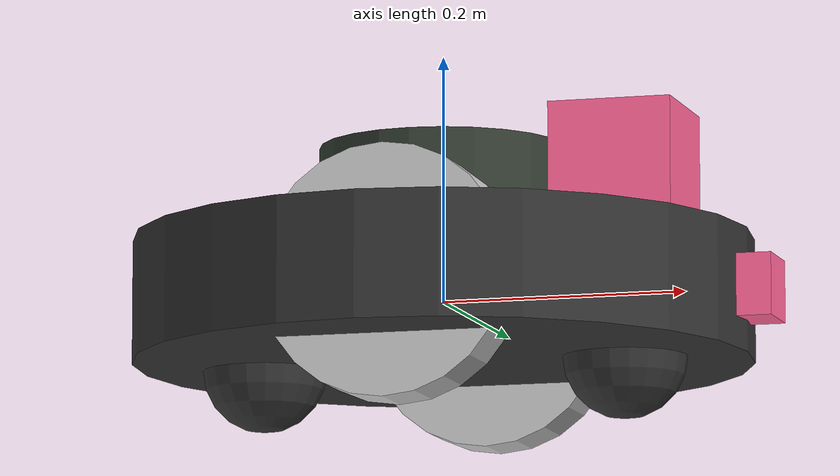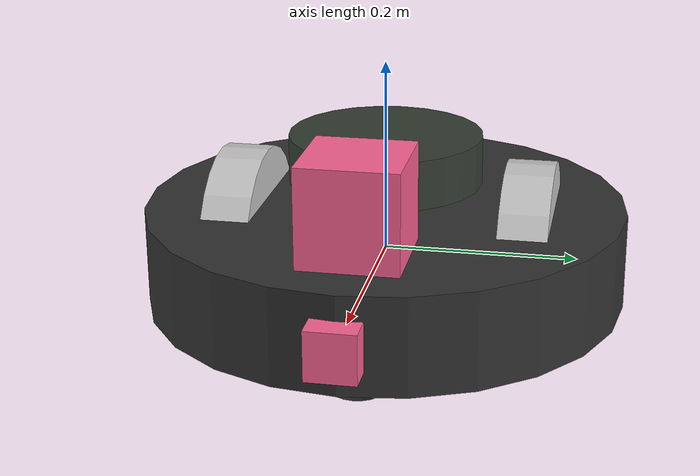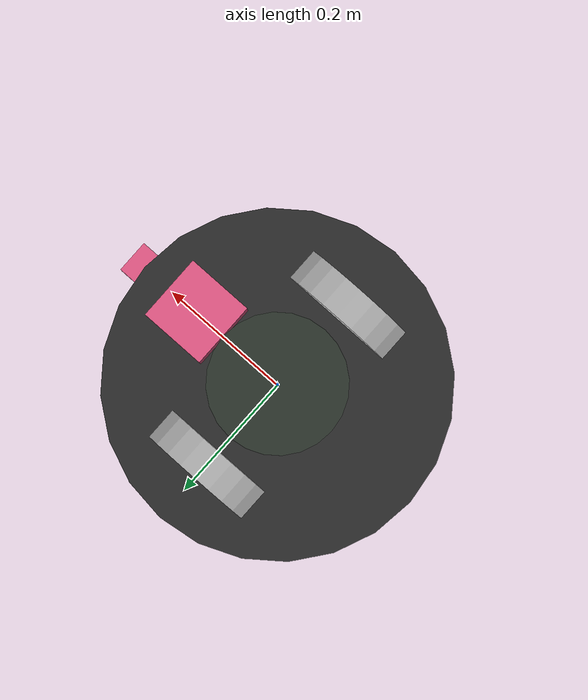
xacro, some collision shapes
<?xml version='1.0'?>

<robot name="slam_bot" xmlns:xacro="http://www.ros.org/wiki/xacro">
  <xacro:include filename="$(find slam_project)/urdf/slam_bot.gazebo" />
  <xacro:property name="pi" value="3.1415"/>

  <link name="robot_footprint"></link>

  <joint name="robot_footprint_joint" type="fixed">
    <origin xyz="0 0 0" rpy="0 0 0" />
    <parent link="robot_footprint"/>
    <child link="chassis" />
  </joint>

  <link name='chassis'>
    <pose>0 0 0.1 0 0 0</pose>

    <inertial>
      <mass value="15.0"/>
      <origin xyz="0.0 0 0" rpy=" 0 0 0"/>
      <inertia
          ixx="0.1" ixy="0" ixz="0"
          iyy="0.1" iyz="0"
          izz="0.1"
      />
    </inertial>

    <collision name='collision'>
      <origin xyz="0 0 0" rpy=" 0 0 0"/>
      <geometry>
        <cylinder radius="0.25" length="0.1"/>
      </geometry>
    </collision>

    <visual name='chassis_visual'>
      <origin xyz="0 0 0" rpy=" 0 0 0"/>
      <geometry>
        <cylinder radius="0.25" length="0.1"/>
      </geometry>
      <material name="chassis_color">
        <color rgba="${50/255} ${50/255} ${50/255} 1.0"/>
      </material>
    </visual>

    <collision name='back_caster_collision'>
      <origin xyz="-0.15 0 -0.05" rpy=" 0 0 0"/>
      <geometry>
        <sphere radius="0.05"/>
      </geometry>
      <surface>
        <friction>
          <ode>
            <mu>0</mu>
            <mu2>0</mu2>
            <slip1>1.0</slip1>
            <slip2>1.0</slip2>
          </ode>
        </friction>
      </surface>
    </collision>

    <visual name='back_caster_visual'>
      <origin xyz="-0.15 0 -0.05" rpy=" 0 0 0"/>
      <geometry>
        <sphere radius="0.05"/>
      </geometry>
      <material name="back_caster_color">
        <color rgba="${50/255} ${50/255} ${50/255} 1.0"/>
      </material>
    </visual>

    <collision name='front_caster_collision'>
      <origin xyz="0.15 0 -0.05" rpy=" 0 0 0"/>
      <geometry>
        <sphere radius="0.05"/>
      </geometry>
      <surface>
        <friction>
          <ode>
            <mu>0</mu>
            <mu2>0</mu2>
            <slip1>1.0</slip1>
            <slip2>1.0</slip2>
          </ode>
        </friction>
      </surface>
    </collision>

    <visual name='front_caster_visual'>
      <origin xyz="0.15 0 -0.05" rpy=" 0 0 0"/>
      <geometry>
        <sphere radius="0.05"/>
      </geometry>
      <material name="front_caster_color">
        <color rgba="${50/255} ${50/255} ${50/255} 1.0"/>
      </material>
    </visual>

  </link>

  <link name='left_wheel'>
    <inertial>
      <mass value="5.0"/>
      <origin xyz="0 0 0" rpy=" 0 1.5707 1.5707"/>
      <inertia
          ixx="0.1" ixy="0" ixz="0"
          iyy="0.1" iyz="0"
          izz="0.1"
      />
    </inertial>

    <collision name='left_wheel_collision'>
      <origin xyz="0 0 0" rpy=" 0 1.5707 1.5707"/>
      <geometry>
        <cylinder radius="0.1" length="0.05"/>
      </geometry>
    </collision>

    <visual name='left_wheel_visual'>
      <origin xyz="0 0 0" rpy=" 0 1.5707 1.5707"/>
      <geometry>
        <cylinder radius="0.1" length="0.05"/>
      </geometry>
      <material name="left_wheel_color">
        <color rgba="${200/255} ${200/255} ${200/255} 1.0"/>
      </material>
    </visual>
  </link>

  <joint type="continuous" name="left_wheel_hinge">
    <origin xyz="0 0.15 0" rpy="0 0 0"/>
    <child link="left_wheel"/>
    <parent link="chassis"/>
    <axis xyz="0 1 0" rpy="0 0 0"/>
    <limit effort="10000" velocity="1000"/>
    <joint_properties damping="1.0" friction="1.0"/>
  </joint>

  <link name='right_wheel'>
    <inertial>
      <mass value="5.0"/>
      <origin xyz="0 0 0" rpy=" 0 1.5707 1.5707"/>
      <inertia
          ixx="0.1" ixy="0" ixz="0"
          iyy="0.1" iyz="0"
          izz="0.1"
      />
    </inertial>

    <collision name='right_wheel_collision'>
      <origin xyz="0 0 0" rpy=" 0 1.5707 1.5707"/>
      <geometry>
        <cylinder radius="0.1" length="0.05"/>
      </geometry>
    </collision>

    <visual name='right_wheel_visual'>
      <origin xyz="0 0 0" rpy=" 0 1.5707 1.5707"/>
      <geometry>
        <cylinder radius="0.1" length="0.05"/>
      </geometry>
      <material name="right_wheel_color">
        <color rgba="${200/255} ${200/255} ${200/255} 1.0"/>
      </material>
    </visual>
  </link>

  <joint type="continuous" name="right_wheel_hinge">
    <origin xyz="0 -0.15 0" rpy="0 0 0"/>
    <child link="right_wheel"/>
    <parent link="chassis"/>
    <axis xyz="0 1 0" rpy="0 0 0"/>
    <limit effort="10000" velocity="1000"/>
    <joint_properties damping="1.0" friction="1.0"/>
  </joint>

<xacro:property name="cameraSize" value="0.05"/>
  <xacro:property name="cameraMass" value="0.1"/>

  <!-- Camera -->
  <link name="camera">
    <collision>
      <origin xyz="0 0 0" rpy="0 0 0"/>
      <geometry>
        <box size="${cameraSize} ${cameraSize} ${cameraSize}"/>
      </geometry>
    </collision>

    <visual>
      <origin xyz="0 0 0" rpy="0 0 0"/>
      <geometry>
        <box size="${cameraSize} ${cameraSize} ${cameraSize}"/>
      </geometry>
      <material name="camera_color">
        <color rgba="${255/255} ${100/255} ${150/255} 1.0"/>
      </material>
    </visual>

    <inertial>
      <mass value="${cameraMass}" />
      <origin xyz="0 0 0" rpy="0 0 0"/>
      <box_inertia m="${cameraMass}" x="${cameraSize}" y="${cameraSize}" z="${cameraSize}" />
      <inertia ixx="1e-6" ixy="0" ixz="0" iyy="1e-6" iyz="0" izz="1e-6" />
    </inertial>
  </link>

  <joint name="camera_joint" type="fixed">
    <axis xyz="0 1 0" />
    <origin xyz=".25 0 0" rpy="0 0 0"/>
    <parent link="chassis"/>
    <child link="camera"/>
  </joint>

  <link name="camera_rgbd_frame"></link>

  <joint name="camera_rgbd_joint" type="fixed">
	  <origin rpy="-${pi/2} 0 -${pi/2}"/>
	  <parent link="camera"/>
	  <child link="camera_rgbd_frame"/>
  </joint>

  <!-- Hokuyo Laser -->
  <link name="hokuyo">
    <inertial>
      <mass value="0.1" />
      <origin xyz="0 0 0" rpy="0 0 0"/>
      <inertia ixx="1e-6" ixy="0" ixz="0" iyy="1e-6" iyz="0" izz="1e-6" />
    </inertial>

    <collision>
      <origin xyz="0 0 0" rpy="0 0 0"/>
      <geometry>
          <box size="0.1 0.1 0.1"/>
      </geometry>
    </collision>

    <visual>
      <material name="hokuyo_color">
        <color rgba="${255/255} ${100/255} ${150/255} 1.0"/>
      </material>
      <origin xyz="0 0 0" rpy="0 0 0"/>
      <geometry>
          <mesh filename="package://slam_project/meshes/hokuyo.dae"/>
      </geometry>
    </visual>
  </link>

  <joint name="hokuyo_joint" type="fixed">
    <axis xyz="0 1 0" />
    <origin xyz=".15 0 .1" rpy="0 0 0"/>
    <parent link="chassis"/>
    <child link="hokuyo"/>
  </joint>

  <link name='mod_1'>
    <inertial>
      <mass value="0.1"/>
      <origin xyz="0 0 0" rpy=" 0 0 0"/>
      <inertia
          ixx="0.1" ixy="0" ixz="0"
          iyy="0.1" iyz="0"
          izz="0.1"
      />
    </inertial>

    <collision name='mod_1_collision'>
      <origin xyz="0 0 0" rpy=" 0 0 0"/>
      <geometry>
        <cylinder radius="0.05" length="0.25"/>
      </geometry>
    </collision>

    <visual name='mod_1_visual'>
      <origin xyz="0 0 0" rpy=" 0 0 0"/>
      <geometry>
        <cylinder radius="0.02" length="0.1"/>
      </geometry>
      <material name="mod_1_color">
        <color rgba="${50/255} ${60/255} ${50/255} 1.0"/>
      </material>
    </visual>
  </link>

  <joint type="fixed" name="mod_1_hinge">
    <origin xyz="0 0 0.05" rpy="0 0 0"/>
    <child link="mod_1"/>
    <parent link="chassis"/>
    <axis xyz="0 0 1" rpy="0 0 0"/>
  </joint>

  <link name='mod_2'>
    <inertial>
      <mass value="0.1"/>
      <origin xyz="0 0 0" rpy=" 0 0 0"/>
      <inertia
          ixx="0.1" ixy="0" ixz="0"
          iyy="0.1" iyz="0"
          izz="0.1"
      />
    </inertial>

    <collision name='mod_2_collision'>
      <origin xyz="0 0 0" rpy=" 0 0 0"/>
      <geometry>
        <cylinder radius="0.1" length="0.05"/>
      </geometry>
    </collision>

    <visual name='mod_2_visual'>
      <origin xyz="0 0 0" rpy=" 0 0 0"/>
      <geometry>
        <cylinder radius="0.1" length="0.05"/>
      </geometry>
      <material name="mod_2_color">
        <color rgba="${50/255} ${60/255} ${50/255} 1.0"/>
      </material>
    </visual>
  </link>

  <joint type="fixed" name="mod_2_hinge">
    <origin xyz="0 0 0.05" rpy="0 0 0"/>
    <child link="mod_2"/>
    <parent link="mod_1"/>
    <axis xyz="0 0 1" rpy="0 0 0"/>
  </joint>

</robot>
